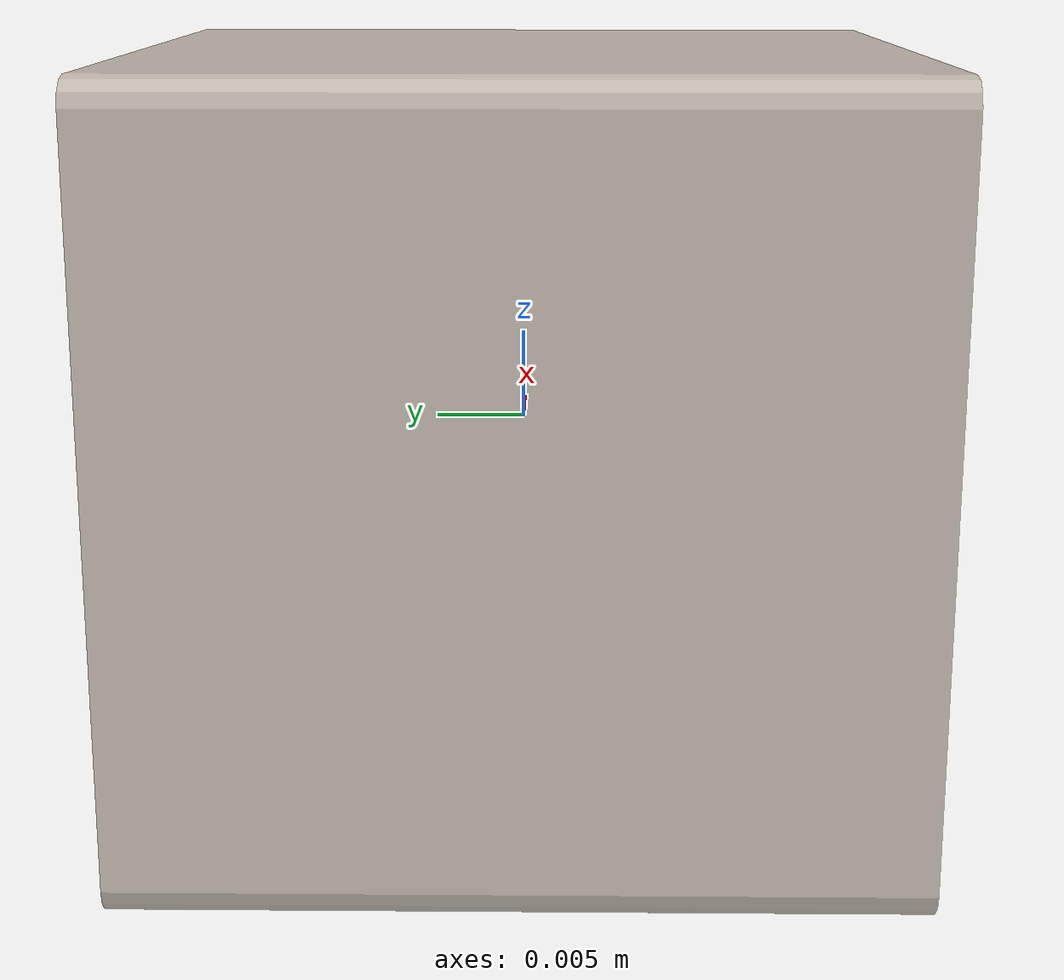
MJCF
<mujoco model="a_block">
  <compiler assetdir="assets" angle="radian"/>
  <asset>
    <mesh name="alphabet_block_large_base" file="alphabet_block_large_base.obj"/>
    <texture name="alphabet_block_large_base_tex" type="2d" file="alphabet_block_large_base_albedotransparency_baked.png"/>
    <material name="alphabet_block_large_base_mat" texture="alphabet_block_large_base_tex" texuniform="false"/>
  </asset>
  <default>
    <default class="a_block">
      <default class="visual">
        <geom group="2" contype="0" conaffinity="0" type="mesh"/>
      </default>
      <default class="collision">
        <geom group="3" condim="4" type="box" friction="0.3 0.3 0.1" priority="1" density="440" solref="0.004 1" solimp="0.95 0.99 0.001"/>
      </default>
    </default>
  </default>
  <worldbody>
    <body name="a_block_body" childclass="a_block">
      <freejoint name="a_block_joint"/>
      <geom class="visual" mesh="alphabet_block_large_base" material="alphabet_block_large_base_mat" name="a_block_alphabet_block_large_base"/>
      <geom class="collision" name="a_block_collision" size="0.021 0.021 0.021"/>
    </body>
  </worldbody>
</mujoco>
